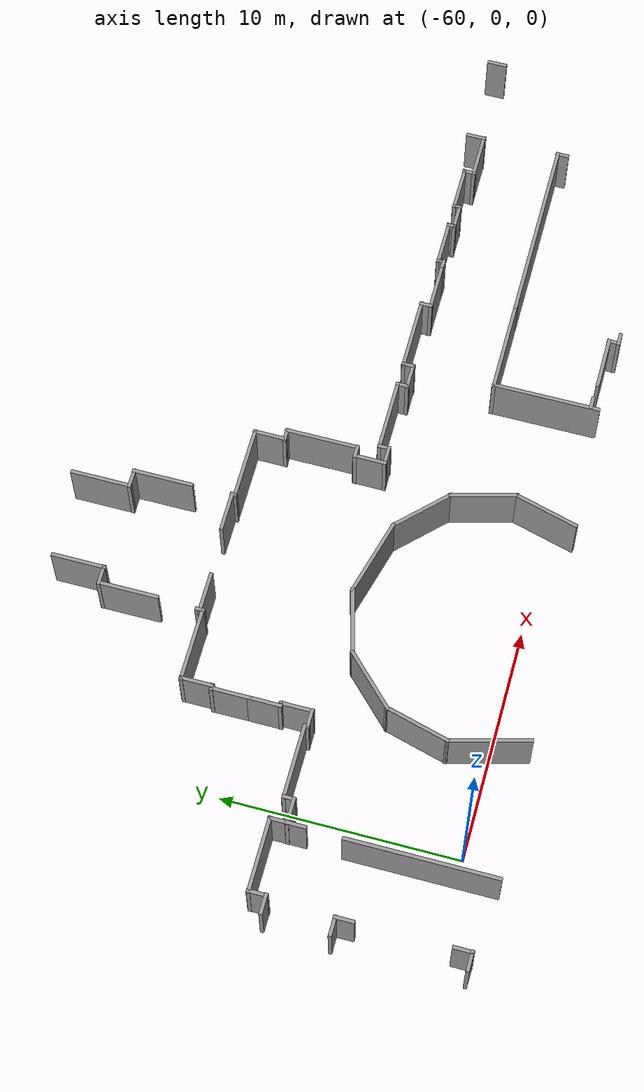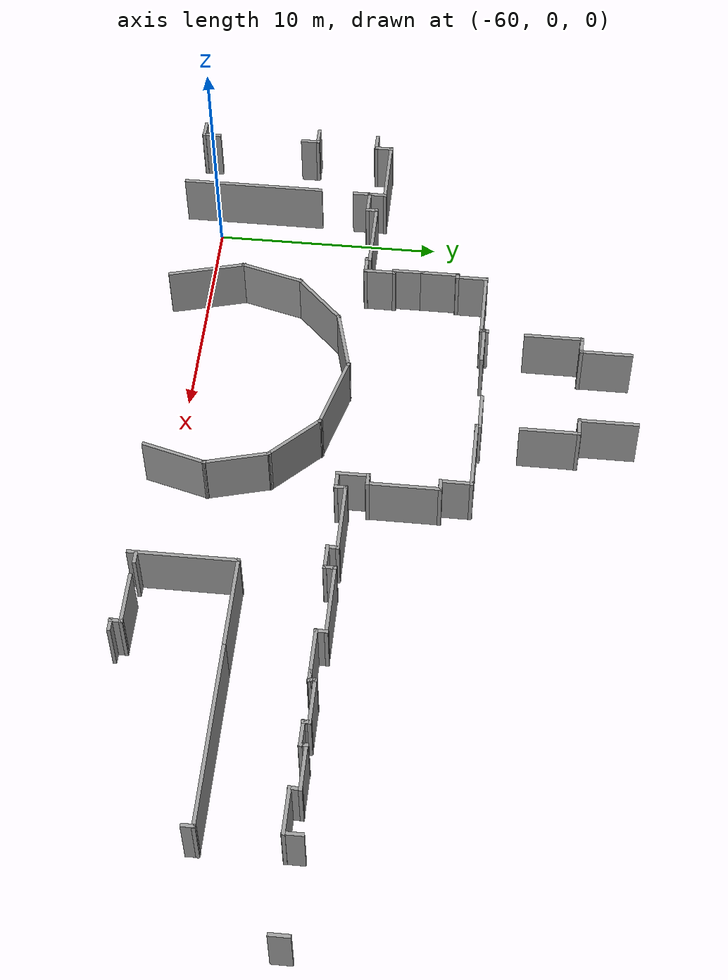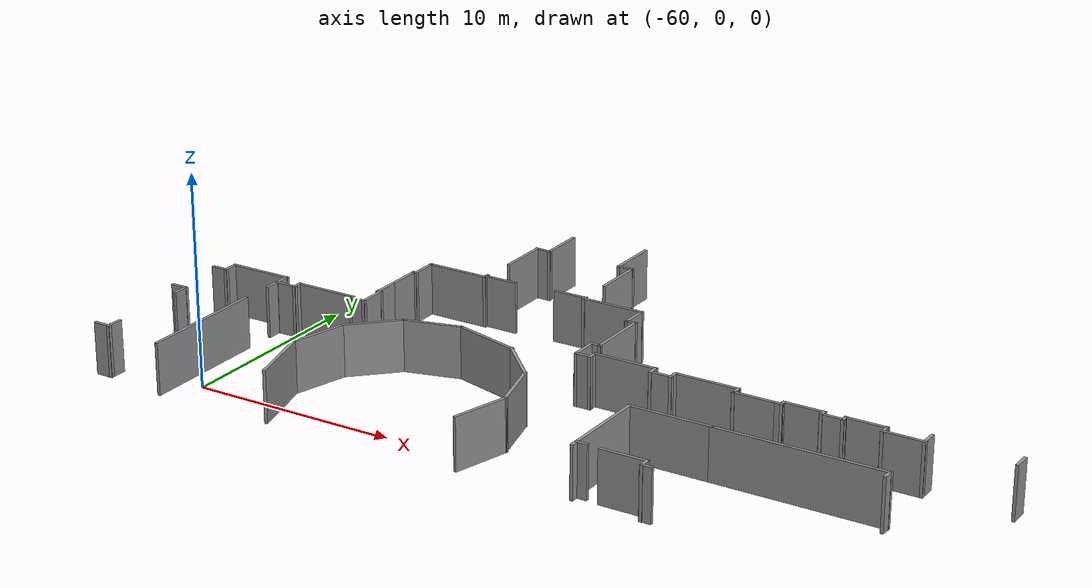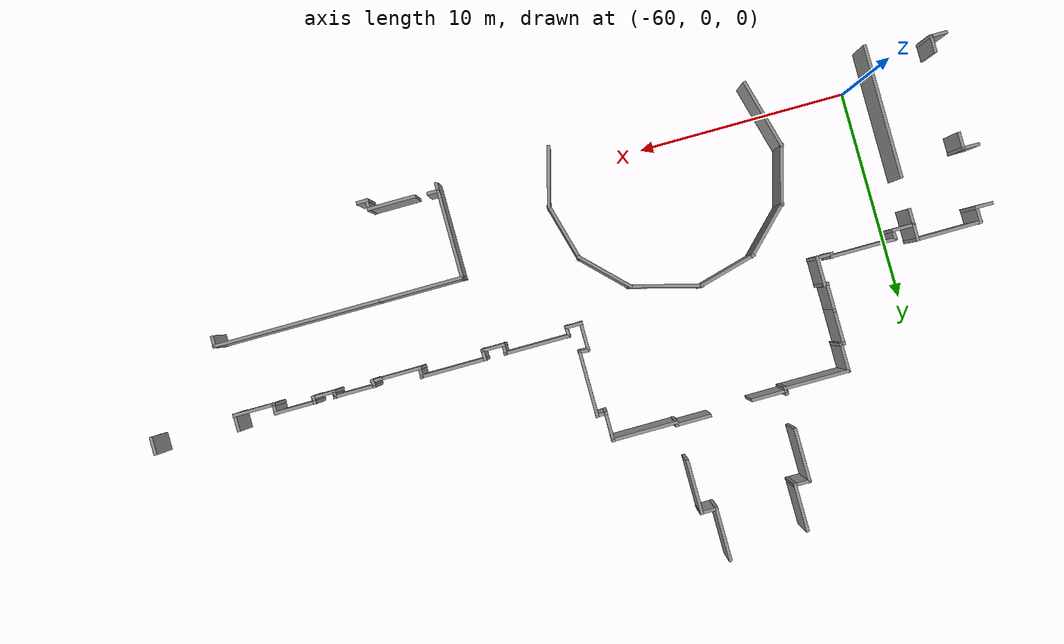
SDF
<sdf version="1.7">
 <model name="TD_n1">
  <pose>-8.28511 -2.84735 0 0 -0 0</pose>
  <link name="Wall_100">
   <collision name="Wall_100_Collision">
    <geometry><box><size>2.32 0.15 2.5</size></box></geometry>
    <pose>0 0 1.25 0 -0 0</pose>
   </collision>
   <visual name="Wall_100_Visual">
    <pose>0 0 1.25 0 -0 0</pose>
    <geometry><box><size>2.32 0.15 2.5</size></box></geometry>
    <material>
     <script><uri>file://media/materials/scripts/gazebo.material</uri><name>Gazebo/Grey</name></script>
     <ambient>1 1 1 1</ambient>
    </material>
    <meta><layer>0</layer></meta>
   </visual>
   <pose>-29.7887 2.31174 0 0 -0 3.14159</pose>
  </link>
  <link name="Wall_104">
   <collision name="Wall_104_Collision">
    <geometry><box><size>3.48 0.15 2.5</size></box></geometry>
    <pose>0 0 1.25 0 -0 0</pose>
   </collision>
   <visual name="Wall_104_Visual">
    <pose>0 0 1.25 0 -0 0</pose>
    <geometry><box><size>3.48 0.15 2.5</size></box></geometry>
    <material>
     <script><uri>file://media/materials/scripts/gazebo.material</uri><name>Gazebo/Grey</name></script>
     <ambient>1 1 1 1</ambient>
    </material>
    <meta><layer>0</layer></meta>
   </visual>
   <pose>-47.4162 2.95714 0 0 -0 1.8326</pose>
  </link>
  <link name="Wall_105">
   <collision name="Wall_105_Collision">
    <geometry><box><size>2.9 0.15 2.5</size></box></geometry>
    <pose>0 0 1.25 0 -0 0</pose>
   </collision>
   <visual name="Wall_105_Visual">
    <pose>0 0 1.25 0 -0 0</pose>
    <geometry><box><size>2.9 0.15 2.5</size></box></geometry>
    <material>
     <script><uri>file://media/materials/scripts/gazebo.material</uri><name>Gazebo/Grey</name></script>
     <ambient>1 1 1 1</ambient>
    </material>
    <meta><layer>0</layer></meta>
   </visual>
   <pose>-47.4912 5.87037 0 0 -0 1.309</pose>
  </link>
  <link name="Wall_106">
   <collision name="Wall_106_Collision">
    <geometry><box><size>2.9 0.15 2.5</size></box></geometry>
    <pose>0 0 1.25 0 -0 0</pose>
   </collision>
   <visual name="Wall_106_Visual">
    <pose>0 0 1.25 0 -0 0</pose>
    <geometry><box><size>2.9 0.15 2.5</size></box></geometry>
    <material>
     <script><uri>file://media/materials/scripts/gazebo.material</uri><name>Gazebo/Grey</name></script>
     <ambient>1 1 1 1</ambient>
    </material>
    <meta><layer>0</layer></meta>
   </visual>
   <pose>-46.1746 8.15072 0 0 -0 0.785398</pose>
  </link>
  <link name="Wall_107">
   <collision name="Wall_107_Collision">
    <geometry><box><size>2.9 0.15 2.5</size></box></geometry>
    <pose>0 0 1.25 0 -0 0</pose>
   </collision>
   <visual name="Wall_107_Visual">
    <pose>0 0 1.25 0 -0 0</pose>
    <geometry><box><size>2.9 0.15 2.5</size></box></geometry>
    <material>
     <script><uri>file://media/materials/scripts/gazebo.material</uri><name>Gazebo/Grey</name></script>
     <ambient>1 1 1 1</ambient>
    </material>
    <meta><layer>0</layer></meta>
   </visual>
   <pose>-43.8943 9.46727 0 0 -0 0.261799</pose>
  </link>
  <link name="Wall_108">
   <collision name="Wall_108_Collision">
    <geometry><box><size>3.48 0.15 2.5</size></box></geometry>
    <pose>0 0 1.25 0 -0 0</pose>
   </collision>
   <visual name="Wall_108_Visual">
    <pose>0 0 1.25 0 -0 0</pose>
    <geometry><box><size>3.48 0.15 2.5</size></box></geometry>
    <material>
     <script><uri>file://media/materials/scripts/gazebo.material</uri><name>Gazebo/Grey</name></script>
     <ambient>1 1 1 1</ambient>
    </material>
    <meta><layer>0</layer></meta>
   </visual>
   <pose>-40.9811 9.39222 0 0 -0 -0.261799</pose>
  </link>
  <link name="Wall_109">
   <collision name="Wall_109_Collision">
    <geometry><box><size>2.9 0.15 2.5</size></box></geometry>
    <pose>0 0 1.25 0 -0 0</pose>
   </collision>
   <visual name="Wall_109_Visual">
    <pose>0 0 1.25 0 -0 0</pose>
    <geometry><box><size>2.9 0.15 2.5</size></box></geometry>
    <material>
     <script><uri>file://media/materials/scripts/gazebo.material</uri><name>Gazebo/Grey</name></script>
     <ambient>1 1 1 1</ambient>
    </material>
    <meta><layer>0</layer></meta>
   </visual>
   <pose>-38.4206 8.0006 0 0 -0 -0.785398</pose>
  </link>
  <link name="Wall_110">
   <collision name="Wall_110_Collision">
    <geometry><box><size>2.9 0.15 2.5</size></box></geometry>
    <pose>0 0 1.25 0 -0 0</pose>
   </collision>
   <visual name="Wall_110_Visual">
    <pose>0 0 1.25 0 -0 0</pose>
    <geometry><box><size>2.9 0.15 2.5</size></box></geometry>
    <material>
     <script><uri>file://media/materials/scripts/gazebo.material</uri><name>Gazebo/Grey</name></script>
     <ambient>1 1 1 1</ambient>
    </material>
    <meta><layer>0</layer></meta>
   </visual>
   <pose>-37.104 5.72025 0 0 -0 -1.309</pose>
  </link>
  <link name="Wall_111">
   <collision name="Wall_111_Collision">
    <geometry><box><size>2.9 0.15 2.5</size></box></geometry>
    <pose>0 0 1.25 0 -0 0</pose>
   </collision>
   <visual name="Wall_111_Visual">
    <pose>0 0 1.25 0 -0 0</pose>
    <geometry><box><size>2.9 0.15 2.5</size></box></geometry>
    <material>
     <script><uri>file://media/materials/scripts/gazebo.material</uri><name>Gazebo/Grey</name></script>
     <ambient>1 1 1 1</ambient>
    </material>
    <meta><layer>0</layer></meta>
   </visual>
   <pose>-37.104 3.08714 0 0 -0 -1.8326</pose>
  </link>
  <link name="Wall_115">
   <collision name="Wall_115_Collision">
    <geometry><box><size>0.87 0.15 2.5</size></box></geometry>
    <pose>0 0 1.25 0 -0 0</pose>
   </collision>
   <visual name="Wall_115_Visual">
    <pose>0 0 1.25 0 -0 0</pose>
    <geometry><box><size>0.87 0.15 2.5</size></box></geometry>
    <material>
     <script><uri>file://media/materials/scripts/gazebo.material</uri><name>Gazebo/Grey</name></script>
     <ambient>1 1 1 1</ambient>
    </material>
    <meta><layer>0</layer></meta>
   </visual>
   <pose>-52.7309 9.37865 0 0 -0 1.5708</pose>
  </link>
  <link name="Wall_116">
   <collision name="Wall_116_Collision">
    <geometry><box><size>1.16 0.15 2.5</size></box></geometry>
    <pose>0 0 1.25 0 -0 0</pose>
   </collision>
   <visual name="Wall_116_Visual">
    <pose>0 0 1.25 0 -0 0</pose>
    <geometry><box><size>1.16 0.15 2.5</size></box></geometry>
    <material>
     <script><uri>file://media/materials/scripts/gazebo.material</uri><name>Gazebo/Grey</name></script>
     <ambient>1 1 1 1</ambient>
    </material>
    <meta><layer>0</layer></meta>
   </visual>
   <pose>-52.2379 9.72665 0 0 -0 0</pose>
  </link>
  <link name="Wall_117">
   <collision name="Wall_117_Collision">
    <geometry><box><size>0.58 0.15 2.5</size></box></geometry>
    <pose>0 0 1.25 0 -0 0</pose>
   </collision>
   <visual name="Wall_117_Visual">
    <pose>0 0 1.25 0 -0 0</pose>
    <geometry><box><size>0.58 0.15 2.5</size></box></geometry>
    <material>
     <script><uri>file://media/materials/scripts/gazebo.material</uri><name>Gazebo/Grey</name></script>
     <ambient>1 1 1 1</ambient>
    </material>
    <meta><layer>0</layer></meta>
   </visual>
   <pose>-51.7449 9.92965 0 0 -0 1.5708</pose>
  </link>
  <link name="Wall_118">
   <collision name="Wall_118_Collision">
    <geometry><box><size>3.19 0.15 2.5</size></box></geometry>
    <pose>0 0 1.25 0 -0 0</pose>
   </collision>
   <visual name="Wall_118_Visual">
    <pose>0 0 1.25 0 -0 0</pose>
    <geometry><box><size>3.19 0.15 2.5</size></box></geometry>
    <material>
     <script><uri>file://media/materials/scripts/gazebo.material</uri><name>Gazebo/Grey</name></script>
     <ambient>1 1 1 1</ambient>
    </material>
    <meta><layer>0</layer></meta>
   </visual>
   <pose>-50.2369 10.1326 0 0 -0 0</pose>
  </link>
  <link name="Wall_121">
   <collision name="Wall_121_Collision">
    <geometry><box><size>0.29 0.15 2.5</size></box></geometry>
    <pose>0 0 1.25 0 -0 0</pose>
   </collision>
   <visual name="Wall_121_Visual">
    <pose>0 0 1.25 0 -0 0</pose>
    <geometry><box><size>0.29 0.15 2.5</size></box></geometry>
    <material>
     <script><uri>file://media/materials/scripts/gazebo.material</uri><name>Gazebo/Grey</name></script>
     <ambient>1 1 1 1</ambient>
    </material>
    <meta><layer>0</layer></meta>
   </visual>
   <pose>-48.7289 10.0746 0 0 -0 -1.5708</pose>
  </link>
  <link name="Wall_122">
   <collision name="Wall_122_Collision">
    <geometry><box><size>0.87 0.15 2.5</size></box></geometry>
    <pose>0 0 1.25 0 -0 0</pose>
   </collision>
   <visual name="Wall_122_Visual">
    <pose>0 0 1.25 0 -0 0</pose>
    <geometry><box><size>0.87 0.15 2.5</size></box></geometry>
    <material>
     <script><uri>file://media/materials/scripts/gazebo.material</uri><name>Gazebo/Grey</name></script>
     <ambient>1 1 1 1</ambient>
    </material>
    <meta><layer>0</layer></meta>
   </visual>
   <pose>-48.3809 10.0166 0 0 -0 0</pose>
  </link>
  <link name="Wall_123">
   <collision name="Wall_123_Collision">
    <geometry><box><size>1.45 0.15 2.5</size></box></geometry>
    <pose>0 0 1.25 0 -0 0</pose>
   </collision>
   <visual name="Wall_123_Visual">
    <pose>0 0 1.25 0 -0 0</pose>
    <geometry><box><size>1.45 0.15 2.5</size></box></geometry>
    <material>
     <script><uri>file://media/materials/scripts/gazebo.material</uri><name>Gazebo/Grey</name></script>
     <ambient>1 1 1 1</ambient>
    </material>
    <meta><layer>0</layer></meta>
   </visual>
   <pose>-48.0329 10.6546 0 0 -0 1.5708</pose>
  </link>
  <link name="Wall_124">
   <collision name="Wall_124_Collision">
    <geometry><box><size>0.29 0.15 2.5</size></box></geometry>
    <pose>0 0 1.25 0 -0 0</pose>
   </collision>
   <visual name="Wall_124_Visual">
    <pose>0 0 1.25 0 -0 0</pose>
    <geometry><box><size>0.29 0.15 2.5</size></box></geometry>
    <material>
     <script><uri>file://media/materials/scripts/gazebo.material</uri><name>Gazebo/Grey</name></script>
     <ambient>1 1 1 1</ambient>
    </material>
    <meta><layer>0</layer></meta>
   </visual>
   <pose>-48.0909 11.2926 0 0 -0 3.14159</pose>
  </link>
  <link name="Wall_125">
   <collision name="Wall_125_Collision">
    <geometry><box><size>1.45 0.15 2.5</size></box></geometry>
    <pose>0 0 1.25 0 -0 0</pose>
   </collision>
   <visual name="Wall_125_Visual">
    <pose>0 0 1.25 0 -0 0</pose>
    <geometry><box><size>1.45 0.15 2.5</size></box></geometry>
    <material>
     <script><uri>file://media/materials/scripts/gazebo.material</uri><name>Gazebo/Grey</name></script>
     <ambient>1 1 1 1</ambient>
    </material>
    <meta><layer>0</layer></meta>
   </visual>
   <pose>-48.1489 11.9306 0 0 -0 1.5708</pose>
  </link>
  <link name="Wall_127">
   <collision name="Wall_127_Collision">
    <geometry><box><size>1.74 0.15 2.5</size></box></geometry>
    <pose>0 0 1.25 0 -0 0</pose>
   </collision>
   <visual name="Wall_127_Visual">
    <pose>0 0 1.25 0 -0 0</pose>
    <geometry><box><size>1.74 0.15 2.5</size></box></geometry>
    <material>
     <script><uri>file://media/materials/scripts/gazebo.material</uri><name>Gazebo/Grey</name></script>
     <ambient>1 1 1 1</ambient>
    </material>
    <meta><layer>0</layer></meta>
   </visual>
   <pose>-48.1489 13.3516 0 0 -0 1.5708</pose>
  </link>
  <link name="Wall_128">
   <collision name="Wall_128_Collision">
    <geometry><box><size>0.29 0.15 2.5</size></box></geometry>
    <pose>0 0 1.25 0 -0 0</pose>
   </collision>
   <visual name="Wall_128_Visual">
    <pose>0 0 1.25 0 -0 0</pose>
    <geometry><box><size>0.29 0.15 2.5</size></box></geometry>
    <material>
     <script><uri>file://media/materials/scripts/gazebo.material</uri><name>Gazebo/Grey</name></script>
     <ambient>1 1 1 1</ambient>
    </material>
    <meta><layer>0</layer></meta>
   </visual>
   <pose>-48.0909 14.1346 0 0 -0 0</pose>
  </link>
  <link name="Wall_129">
   <collision name="Wall_129_Collision">
    <geometry><box><size>1.45 0.15 2.5</size></box></geometry>
    <pose>0 0 1.25 0 -0 0</pose>
   </collision>
   <visual name="Wall_129_Visual">
    <pose>0 0 1.25 0 -0 0</pose>
    <geometry><box><size>1.45 0.15 2.5</size></box></geometry>
    <material>
     <script><uri>file://media/materials/scripts/gazebo.material</uri><name>Gazebo/Grey</name></script>
     <ambient>1 1 1 1</ambient>
    </material>
    <meta><layer>0</layer></meta>
   </visual>
   <pose>-48.0329 14.7726 0 0 -0 1.5708</pose>
  </link>
  <link name="Wall_130">
   <collision name="Wall_130_Collision">
    <geometry><box><size>3.19 0.15 2.5</size></box></geometry>
    <pose>0 0 1.25 0 -0 0</pose>
   </collision>
   <visual name="Wall_130_Visual">
    <pose>0 0 1.25 0 -0 0</pose>
    <geometry><box><size>3.19 0.15 2.5</size></box></geometry>
    <material>
     <script><uri>file://media/materials/scripts/gazebo.material</uri><name>Gazebo/Grey</name></script>
     <ambient>1 1 1 1</ambient>
    </material>
    <meta><layer>0</layer></meta>
   </visual>
   <pose>-46.5249 15.4106 0 0 -0 0</pose>
  </link>
  <link name="Wall_131">
   <collision name="Wall_131_Collision">
    <geometry><box><size>0.29 0.15 2.5</size></box></geometry>
    <pose>0 0 1.25 0 -0 0</pose>
   </collision>
   <visual name="Wall_131_Visual">
    <pose>0 0 1.25 0 -0 0</pose>
    <geometry><box><size>0.29 0.15 2.5</size></box></geometry>
    <material>
     <script><uri>file://media/materials/scripts/gazebo.material</uri><name>Gazebo/Grey</name></script>
     <ambient>1 1 1 1</ambient>
    </material>
    <meta><layer>0</layer></meta>
   </visual>
   <pose>-45.0169 15.4686 0 0 -0 1.5708</pose>
  </link>
  <link name="Wall_132">
   <collision name="Wall_132_Collision">
    <geometry><box><size>1.74 0.15 2.5</size></box></geometry>
    <pose>0 0 1.25 0 -0 0</pose>
   </collision>
   <visual name="Wall_132_Visual">
    <pose>0 0 1.25 0 -0 0</pose>
    <geometry><box><size>1.74 0.15 2.5</size></box></geometry>
    <material>
     <script><uri>file://media/materials/scripts/gazebo.material</uri><name>Gazebo/Grey</name></script>
     <ambient>1 1 1 1</ambient>
    </material>
    <meta><layer>0</layer></meta>
   </visual>
   <pose>-44.2339 15.5266 0 0 -0 0</pose>
  </link>
  <link name="Wall_134">
   <collision name="Wall_134_Collision">
    <geometry><box><size>1.74 0.15 2.5</size></box></geometry>
    <pose>0 0 1.25 0 -0 0</pose>
   </collision>
   <visual name="Wall_134_Visual">
    <pose>0 0 1.25 0 -0 0</pose>
    <geometry><box><size>1.74 0.15 2.5</size></box></geometry>
    <material>
     <script><uri>file://media/materials/scripts/gazebo.material</uri><name>Gazebo/Grey</name></script>
     <ambient>1 1 1 1</ambient>
    </material>
    <meta><layer>0</layer></meta>
   </visual>
   <pose>-40.527 15.6964 0 0 -0 0</pose>
  </link>
  <link name="Wall_135">
   <collision name="Wall_135_Collision">
    <geometry><box><size>0.29 0.15 2.5</size></box></geometry>
    <pose>0 0 1.25 0 -0 0</pose>
   </collision>
   <visual name="Wall_135_Visual">
    <pose>0 0 1.25 0 -0 0</pose>
    <geometry><box><size>0.29 0.15 2.5</size></box></geometry>
    <material>
     <script><uri>file://media/materials/scripts/gazebo.material</uri><name>Gazebo/Grey</name></script>
     <ambient>1 1 1 1</ambient>
    </material>
    <meta><layer>0</layer></meta>
   </visual>
   <pose>-39.744 15.6384 0 0 -0 -1.5708</pose>
  </link>
  <link name="Wall_136">
   <collision name="Wall_136_Collision">
    <geometry><box><size>3.19 0.15 2.5</size></box></geometry>
    <pose>0 0 1.25 0 -0 0</pose>
   </collision>
   <visual name="Wall_136_Visual">
    <pose>0 0 1.25 0 -0 0</pose>
    <geometry><box><size>3.19 0.15 2.5</size></box></geometry>
    <material>
     <script><uri>file://media/materials/scripts/gazebo.material</uri><name>Gazebo/Grey</name></script>
     <ambient>1 1 1 1</ambient>
    </material>
    <meta><layer>0</layer></meta>
   </visual>
   <pose>-38.236 15.5804 0 0 -0 0</pose>
  </link>
  <link name="Wall_137">
   <collision name="Wall_137_Collision">
    <geometry><box><size>1.45 0.15 2.5</size></box></geometry>
    <pose>0 0 1.25 0 -0 0</pose>
   </collision>
   <visual name="Wall_137_Visual">
    <pose>0 0 1.25 0 -0 0</pose>
    <geometry><box><size>1.45 0.15 2.5</size></box></geometry>
    <material>
     <script><uri>file://media/materials/scripts/gazebo.material</uri><name>Gazebo/Grey</name></script>
     <ambient>1 1 1 1</ambient>
    </material>
    <meta><layer>0</layer></meta>
   </visual>
   <pose>-36.728 14.9424 0 0 -0 -1.5708</pose>
  </link>
  <link name="Wall_138">
   <collision name="Wall_138_Collision">
    <geometry><box><size>0.58 0.15 2.5</size></box></geometry>
    <pose>0 0 1.25 0 -0 0</pose>
   </collision>
   <visual name="Wall_138_Visual">
    <pose>0 0 1.25 0 -0 0</pose>
    <geometry><box><size>0.58 0.15 2.5</size></box></geometry>
    <material>
     <script><uri>file://media/materials/scripts/gazebo.material</uri><name>Gazebo/Grey</name></script>
     <ambient>1 1 1 1</ambient>
    </material>
    <meta><layer>0</layer></meta>
   </visual>
   <pose>-36.525 14.3044 0 0 -0 0</pose>
  </link>
  <link name="Wall_139">
   <collision name="Wall_139_Collision">
    <geometry><box><size>3.19 0.15 2.5</size></box></geometry>
    <pose>0 0 1.25 0 -0 0</pose>
   </collision>
   <visual name="Wall_139_Visual">
    <pose>0 0 1.25 0 -0 0</pose>
    <geometry><box><size>3.19 0.15 2.5</size></box></geometry>
    <material>
     <script><uri>file://media/materials/scripts/gazebo.material</uri><name>Gazebo/Grey</name></script>
     <ambient>1 1 1 1</ambient>
    </material>
    <meta><layer>0</layer></meta>
   </visual>
   <pose>-36.322 12.7964 0 0 -0 -1.5708</pose>
  </link>
  <link name="Wall_141">
   <collision name="Wall_141_Collision">
    <geometry><box><size>0.58 0.15 2.5</size></box></geometry>
    <pose>0 0 1.25 0 -0 0</pose>
   </collision>
   <visual name="Wall_141_Visual">
    <pose>0 0 1.25 0 -0 0</pose>
    <geometry><box><size>0.58 0.15 2.5</size></box></geometry>
    <material>
     <script><uri>file://media/materials/scripts/gazebo.material</uri><name>Gazebo/Grey</name></script>
     <ambient>1 1 1 1</ambient>
    </material>
    <meta><layer>0</layer></meta>
   </visual>
   <pose>-36.525 11.2884 0 0 -0 3.14159</pose>
  </link>
  <link name="Wall_142">
   <collision name="Wall_142_Collision">
    <geometry><box><size>1.45 0.15 2.5</size></box></geometry>
    <pose>0 0 1.25 0 -0 0</pose>
   </collision>
   <visual name="Wall_142_Visual">
    <pose>0 0 1.25 0 -0 0</pose>
    <geometry><box><size>1.45 0.15 2.5</size></box></geometry>
    <material>
     <script><uri>file://media/materials/scripts/gazebo.material</uri><name>Gazebo/Grey</name></script>
     <ambient>1 1 1 1</ambient>
    </material>
    <meta><layer>0</layer></meta>
   </visual>
   <pose>-36.728 10.6504 0 0 -0 -1.5708</pose>
  </link>
  <link name="Wall_143">
   <collision name="Wall_143_Collision">
    <geometry><box><size>0.87 0.15 2.5</size></box></geometry>
    <pose>0 0 1.25 0 -0 0</pose>
   </collision>
   <visual name="Wall_143_Visual">
    <pose>0 0 1.25 0 -0 0</pose>
    <geometry><box><size>0.87 0.15 2.5</size></box></geometry>
    <material>
     <script><uri>file://media/materials/scripts/gazebo.material</uri><name>Gazebo/Grey</name></script>
     <ambient>1 1 1 1</ambient>
    </material>
    <meta><layer>0</layer></meta>
   </visual>
   <pose>-36.38 10.0124 0 0 -0 0</pose>
  </link>
  <link name="Wall_144">
   <collision name="Wall_144_Collision">
    <geometry><box><size>0.58 0.15 2.5</size></box></geometry>
    <pose>0 0 1.25 0 -0 0</pose>
   </collision>
   <visual name="Wall_144_Visual">
    <pose>0 0 1.25 0 -0 0</pose>
    <geometry><box><size>0.58 0.15 2.5</size></box></geometry>
    <material>
     <script><uri>file://media/materials/scripts/gazebo.material</uri><name>Gazebo/Grey</name></script>
     <ambient>1 1 1 1</ambient>
    </material>
    <meta><layer>0</layer></meta>
   </visual>
   <pose>-36.032 10.2154 0 0 -0 1.5708</pose>
  </link>
  <link name="Wall_145">
   <collision name="Wall_145_Collision">
    <geometry><box><size>3.19 0.15 2.5</size></box></geometry>
    <pose>0 0 1.25 0 -0 0</pose>
   </collision>
   <visual name="Wall_145_Visual">
    <pose>0 0 1.25 0 -0 0</pose>
    <geometry><box><size>3.19 0.15 2.5</size></box></geometry>
    <material>
     <script><uri>file://media/materials/scripts/gazebo.material</uri><name>Gazebo/Grey</name></script>
     <ambient>1 1 1 1</ambient>
    </material>
    <meta><layer>0</layer></meta>
   </visual>
   <pose>-34.524 10.4184 0 0 -0 0</pose>
  </link>
  <link name="Wall_146">
   <collision name="Wall_146_Collision">
    <geometry><box><size>0.58 0.15 2.5</size></box></geometry>
    <pose>0 0 1.25 0 -0 0</pose>
   </collision>
   <visual name="Wall_146_Visual">
    <pose>0 0 1.25 0 -0 0</pose>
    <geometry><box><size>0.58 0.15 2.5</size></box></geometry>
    <material>
     <script><uri>file://media/materials/scripts/gazebo.material</uri><name>Gazebo/Grey</name></script>
     <ambient>1 1 1 1</ambient>
    </material>
    <meta><layer>0</layer></meta>
   </visual>
   <pose>-33.016 10.2154 0 0 -0 -1.5708</pose>
  </link>
  <link name="Wall_147">
   <collision name="Wall_147_Collision">
    <geometry><box><size>1.16 0.15 2.5</size></box></geometry>
    <pose>0 0 1.25 0 -0 0</pose>
   </collision>
   <visual name="Wall_147_Visual">
    <pose>0 0 1.25 0 -0 0</pose>
    <geometry><box><size>1.16 0.15 2.5</size></box></geometry>
    <material>
     <script><uri>file://media/materials/scripts/gazebo.material</uri><name>Gazebo/Grey</name></script>
     <ambient>1 1 1 1</ambient>
    </material>
    <meta><layer>0</layer></meta>
   </visual>
   <pose>-32.523 10.0124 0 0 -0 0</pose>
  </link>
  <link name="Wall_148">
   <collision name="Wall_148_Collision">
    <geometry><box><size>0.58 0.15 2.5</size></box></geometry>
    <pose>0 0 1.25 0 -0 0</pose>
   </collision>
   <visual name="Wall_148_Visual">
    <pose>0 0 1.25 0 -0 0</pose>
    <geometry><box><size>0.58 0.15 2.5</size></box></geometry>
    <material>
     <script><uri>file://media/materials/scripts/gazebo.material</uri><name>Gazebo/Grey</name></script>
     <ambient>1 1 1 1</ambient>
    </material>
    <meta><layer>0</layer></meta>
   </visual>
   <pose>-32.03 10.2154 0 0 -0 1.5708</pose>
  </link>
  <link name="Wall_149">
   <collision name="Wall_149_Collision">
    <geometry><box><size>3.19 0.15 2.5</size></box></geometry>
    <pose>0 0 1.25 0 -0 0</pose>
   </collision>
   <visual name="Wall_149_Visual">
    <pose>0 0 1.25 0 -0 0</pose>
    <geometry><box><size>3.19 0.15 2.5</size></box></geometry>
    <material>
     <script><uri>file://media/materials/scripts/gazebo.material</uri><name>Gazebo/Grey</name></script>
     <ambient>1 1 1 1</ambient>
    </material>
    <meta><layer>0</layer></meta>
   </visual>
   <pose>-30.522 10.4184 0 0 -0 0</pose>
  </link>
  <link name="Wall_150">
   <collision name="Wall_150_Collision">
    <geometry><box><size>0.58 0.15 2.5</size></box></geometry>
    <pose>0 0 1.25 0 -0 0</pose>
   </collision>
   <visual name="Wall_150_Visual">
    <pose>0 0 1.25 0 -0 0</pose>
    <geometry><box><size>0.58 0.15 2.5</size></box></geometry>
    <material>
     <script><uri>file://media/materials/scripts/gazebo.material</uri><name>Gazebo/Grey</name></script>
     <ambient>1 1 1 1</ambient>
    </material>
    <meta><layer>0</layer></meta>
   </visual>
   <pose>-29.014 10.2154 0 0 -0 -1.5708</pose>
  </link>
  <link name="Wall_151">
   <collision name="Wall_151_Collision">
    <geometry><box><size>2.03 0.15 2.5</size></box></geometry>
    <pose>0 0 1.25 0 -0 0</pose>
   </collision>
   <visual name="Wall_151_Visual">
    <pose>0 0 1.25 0 -0 0</pose>
    <geometry><box><size>2.03 0.15 2.5</size></box></geometry>
    <material>
     <script><uri>file://media/materials/scripts/gazebo.material</uri><name>Gazebo/Grey</name></script>
     <ambient>1 1 1 1</ambient>
    </material>
    <meta><layer>0</layer></meta>
   </visual>
   <pose>-28.086 10.0124 0 0 -0 0</pose>
  </link>
  <link name="Wall_152">
   <collision name="Wall_152_Collision">
    <geometry><box><size>0.58 0.15 2.5</size></box></geometry>
    <pose>0 0 1.25 0 -0 0</pose>
   </collision>
   <visual name="Wall_152_Visual">
    <pose>0 0 1.25 0 -0 0</pose>
    <geometry><box><size>0.58 0.15 2.5</size></box></geometry>
    <material>
     <script><uri>file://media/materials/scripts/gazebo.material</uri><name>Gazebo/Grey</name></script>
     <ambient>1 1 1 1</ambient>
    </material>
    <meta><layer>0</layer></meta>
   </visual>
   <pose>-26.955 10.0124 0 0 -0 0</pose>
  </link>
  <link name="Wall_153">
   <collision name="Wall_153_Collision">
    <geometry><box><size>0.29 0.15 2.5</size></box></geometry>
    <pose>0 0 1.25 0 -0 0</pose>
   </collision>
   <visual name="Wall_153_Visual">
    <pose>0 0 1.25 0 -0 0</pose>
    <geometry><box><size>0.29 0.15 2.5</size></box></geometry>
    <material>
     <script><uri>file://media/materials/scripts/gazebo.material</uri><name>Gazebo/Grey</name></script>
     <ambient>1 1 1 1</ambient>
    </material>
    <meta><layer>0</layer></meta>
   </visual>
   <pose>-26.7671 10.0684 0 0 -0 1.8326</pose>
  </link>
  <link name="Wall_154">
   <collision name="Wall_154_Collision">
    <geometry><box><size>0.29 0.15 2.5</size></box></geometry>
    <pose>0 0 1.25 0 -0 0</pose>
   </collision>
   <visual name="Wall_154_Visual">
    <pose>0 0 1.25 0 -0 0</pose>
    <geometry><box><size>0.29 0.15 2.5</size></box></geometry>
    <material>
     <script><uri>file://media/materials/scripts/gazebo.material</uri><name>Gazebo/Grey</name></script>
     <ambient>1 1 1 1</ambient>
    </material>
    <meta><layer>0</layer></meta>
   </visual>
   <pose>-26.7821 10.1824 0 0 -0 1.5708</pose>
  </link>
  <link name="Wall_155">
   <collision name="Wall_155_Collision">
    <geometry><box><size>2.03 0.15 2.5</size></box></geometry>
    <pose>0 0 1.25 0 -0 0</pose>
   </collision>
   <visual name="Wall_155_Visual">
    <pose>0 0 1.25 0 -0 0</pose>
    <geometry><box><size>2.03 0.15 2.5</size></box></geometry>
    <material>
     <script><uri>file://media/materials/scripts/gazebo.material</uri><name>Gazebo/Grey</name></script>
     <ambient>1 1 1 1</ambient>
    </material>
    <meta><layer>0</layer></meta>
   </visual>
   <pose>-25.8541 10.2404 0 0 -0 0</pose>
  </link>
  <link name="Wall_157">
   <collision name="Wall_157_Collision">
    <geometry><box><size>0.29 0.15 2.5</size></box></geometry>
    <pose>0 0 1.25 0 -0 0</pose>
   </collision>
   <visual name="Wall_157_Visual">
    <pose>0 0 1.25 0 -0 0</pose>
    <geometry><box><size>0.29 0.15 2.5</size></box></geometry>
    <material>
     <script><uri>file://media/materials/scripts/gazebo.material</uri><name>Gazebo/Grey</name></script>
     <ambient>1 1 1 1</ambient>
    </material>
    <meta><layer>0</layer></meta>
   </visual>
   <pose>-45.0169 15.5846 0 0 -0 1.5708</pose>
  </link>
  <link name="Wall_159">
   <collision name="Wall_159_Collision">
    <geometry><box><size>2.61 0.15 2.5</size></box></geometry>
    <pose>0 0 1.25 0 -0 0</pose>
   </collision>
   <visual name="Wall_159_Visual">
    <pose>0 0 1.25 0 -0 0</pose>
    <geometry><box><size>2.61 0.15 2.5</size></box></geometry>
    <material>
     <script><uri>file://media/materials/scripts/gazebo.material</uri><name>Gazebo/Grey</name></script>
     <ambient>1 1 1 1</ambient>
    </material>
    <meta><layer>0</layer></meta>
   </visual>
   <pose>-44.94 18.5928 0 0 -0 1.5708</pose>
  </link>
  <link name="Wall_160">
   <collision name="Wall_160_Collision">
    <geometry><box><size>0.87 0.15 2.5</size></box></geometry>
    <pose>0 0 1.25 0 -0 0</pose>
   </collision>
   <visual name="Wall_160_Visual">
    <pose>0 0 1.25 0 -0 0</pose>
    <geometry><box><size>0.87 0.15 2.5</size></box></geometry>
    <material>
     <script><uri>file://media/materials/scripts/gazebo.material</uri><name>Gazebo/Grey</name></script>
     <ambient>1 1 1 1</ambient>
    </material>
    <meta><layer>0</layer></meta>
   </visual>
   <pose>-44.592 19.8108 0 0 -0 0</pose>
  </link>
  <link name="Wall_161">
   <collision name="Wall_161_Collision">
    <geometry><box><size>2.32 0.15 2.5</size></box></geometry>
    <pose>0 0 1.25 0 -0 0</pose>
   </collision>
   <visual name="Wall_161_Visual">
    <pose>0 0 1.25 0 -0 0</pose>
    <geometry><box><size>2.32 0.15 2.5</size></box></geometry>
    <material>
     <script><uri>file://media/materials/scripts/gazebo.material</uri><name>Gazebo/Grey</name></script>
     <ambient>1 1 1 1</ambient>
    </material>
    <meta><layer>0</layer></meta>
   </visual>
   <pose>-44.244 20.8838 0 0 -0 1.5708</pose>
  </link>
  <link name="Wall_163">
   <collision name="Wall_163_Collision">
    <geometry><box><size>2.61 0.15 2.5</size></box></geometry>
    <pose>0 0 1.25 0 -0 0</pose>
   </collision>
   <visual name="Wall_163_Visual">
    <pose>0 0 1.25 0 -0 0</pose>
    <geometry><box><size>2.61 0.15 2.5</size></box></geometry>
    <material>
     <script><uri>file://media/materials/scripts/gazebo.material</uri><name>Gazebo/Grey</name></script>
     <ambient>1 1 1 1</ambient>
    </material>
    <meta><layer>0</layer></meta>
   </visual>
   <pose>-39.7665 18.674 0 0 -0 1.5708</pose>
  </link>
  <link name="Wall_164">
   <collision name="Wall_164_Collision">
    <geometry><box><size>0.87 0.15 2.5</size></box></geometry>
    <pose>0 0 1.25 0 -0 0</pose>
   </collision>
   <visual name="Wall_164_Visual">
    <pose>0 0 1.25 0 -0 0</pose>
    <geometry><box><size>0.87 0.15 2.5</size></box></geometry>
    <material>
     <script><uri>file://media/materials/scripts/gazebo.material</uri><name>Gazebo/Grey</name></script>
     <ambient>1 1 1 1</ambient>
    </material>
    <meta><layer>0</layer></meta>
   </visual>
   <pose>-40.1145 19.892 0 0 -0 3.14159</pose>
  </link>
  <link name="Wall_165">
   <collision name="Wall_165_Collision">
    <geometry><box><size>2.61 0.15 2.5</size></box></geometry>
    <pose>0 0 1.25 0 -0 0</pose>
   </collision>
   <visual name="Wall_165_Visual">
    <pose>0 0 1.25 0 -0 0</pose>
    <geometry><box><size>2.61 0.15 2.5</size></box></geometry>
    <material>
     <script><uri>file://media/materials/scripts/gazebo.material</uri><name>Gazebo/Grey</name></script>
     <ambient>1 1 1 1</ambient>
    </material>
    <meta><layer>0</layer></meta>
   </visual>
   <pose>-40.4625 21.11 0 0 -0 1.5708</pose>
  </link>
  <link name="Wall_167">
   <collision name="Wall_167_Collision">
    <geometry><box><size>0.87 0.15 2.5</size></box></geometry>
    <pose>0 0 1.25 0 -0 0</pose>
   </collision>
   <visual name="Wall_167_Visual">
    <pose>0 0 1.25 0 -0 0</pose>
    <geometry><box><size>0.87 0.15 2.5</size></box></geometry>
    <material>
     <script><uri>file://media/materials/scripts/gazebo.material</uri><name>Gazebo/Grey</name></script>
     <ambient>1 1 1 1</ambient>
    </material>
    <meta><layer>0</layer></meta>
   </visual>
   <pose>-52.7309 10.0746 0 0 -0 1.5708</pose>
  </link>
  <link name="Wall_168">
   <collision name="Wall_168_Collision">
    <geometry><box><size>3.19 0.15 2.5</size></box></geometry>
    <pose>0 0 1.25 0 -0 0</pose>
   </collision>
   <visual name="Wall_168_Visual">
    <pose>0 0 1.25 0 -0 0</pose>
    <geometry><box><size>3.19 0.15 2.5</size></box></geometry>
    <material>
     <script><uri>file://media/materials/scripts/gazebo.material</uri><name>Gazebo/Grey</name></script>
     <ambient>1 1 1 1</ambient>
    </material>
    <meta><layer>0</layer></meta>
   </visual>
   <pose>-54.2389 10.4226 0 0 -0 3.14159</pose>
  </link>
  <link name="Wall_169">
   <collision name="Wall_169_Collision">
    <geometry><box><size>0.87 0.15 2.5</size></box></geometry>
    <pose>0 0 1.25 0 -0 0</pose>
   </collision>
   <visual name="Wall_169_Visual">
    <pose>0 0 1.25 0 -0 0</pose>
    <geometry><box><size>0.87 0.15 2.5</size></box></geometry>
    <material>
     <script><uri>file://media/materials/scripts/gazebo.material</uri><name>Gazebo/Grey</name></script>
     <ambient>1 1 1 1</ambient>
    </material>
    <meta><layer>0</layer></meta>
   </visual>
   <pose>-55.7469 10.0746 0 0 -0 -1.5708</pose>
  </link>
  <link name="Wall_171">
   <collision name="Wall_171_Collision">
    <geometry><box><size>0.87 0.15 2.5</size></box></geometry>
    <pose>0 0 1.25 0 -0 0</pose>
   </collision>
   <visual name="Wall_171_Visual">
    <pose>0 0 1.25 0 -0 0</pose>
    <geometry><box><size>0.87 0.15 2.5</size></box></geometry>
    <material>
     <script><uri>file://media/materials/scripts/gazebo.material</uri><name>Gazebo/Grey</name></script>
     <ambient>1 1 1 1</ambient>
    </material>
    <meta><layer>0</layer></meta>
   </visual>
   <pose>-56.0949 9.72665 0 0 -0 3.14159</pose>
  </link>
  <link name="Wall_173">
   <collision name="Wall_173_Collision">
    <geometry><box><size>0.87 0.15 2.5</size></box></geometry>
    <pose>0 0 1.25 0 -0 0</pose>
   </collision>
   <visual name="Wall_173_Visual">
    <pose>0 0 1.25 0 -0 0</pose>
    <geometry><box><size>0.87 0.15 2.5</size></box></geometry>
    <material>
     <script><uri>file://media/materials/scripts/gazebo.material</uri><name>Gazebo/Grey</name></script>
     <ambient>1 1 1 1</ambient>
    </material>
    <meta><layer>0</layer></meta>
   </visual>
   <pose>-56.2345 6.945 0 0 -0 0</pose>
  </link>
  <link name="Wall_174">
   <collision name="Wall_174_Collision">
    <geometry><box><size>0.87 0.15 2.5</size></box></geometry>
    <pose>0 0 1.25 0 -0 0</pose>
   </collision>
   <visual name="Wall_174_Visual">
    <pose>0 0 1.25 0 -0 0</pose>
    <geometry><box><size>0.87 0.15 2.5</size></box></geometry>
    <material>
     <script><uri>file://media/materials/scripts/gazebo.material</uri><name>Gazebo/Grey</name></script>
     <ambient>1 1 1 1</ambient>
    </material>
    <meta><layer>0</layer></meta>
   </visual>
   <pose>-55.8865 6.597 0 0 -0 -1.5708</pose>
  </link>
  <link name="Wall_176">
   <collision name="Wall_176_Collision">
    <geometry><box><size>0.87 0.15 2.5</size></box></geometry>
    <pose>0 0 1.25 0 -0 0</pose>
   </collision>
   <visual name="Wall_176_Visual">
    <pose>0 0 1.25 0 -0 0</pose>
    <geometry><box><size>0.87 0.15 2.5</size></box></geometry>
    <material>
     <script><uri>file://media/materials/scripts/gazebo.material</uri><name>Gazebo/Grey</name></script>
     <ambient>1 1 1 1</ambient>
    </material>
    <meta><layer>0</layer></meta>
   </visual>
   <pose>-55.8521 1.91037 0 0 -0 -1.5708</pose>
  </link>
  <link name="Wall_177">
   <collision name="Wall_177_Collision">
    <geometry><box><size>0.87 0.15 2.5</size></box></geometry>
    <pose>0 0 1.25 0 -0 0</pose>
   </collision>
   <visual name="Wall_177_Visual">
    <pose>0 0 1.25 0 -0 0</pose>
    <geometry><box><size>0.87 0.15 2.5</size></box></geometry>
    <material>
     <script><uri>file://media/materials/scripts/gazebo.material</uri><name>Gazebo/Grey</name></script>
     <ambient>1 1 1 1</ambient>
    </material>
    <meta><layer>0</layer></meta>
   </visual>
   <pose>-56.2001 1.56236 0 0 -0 3.14159</pose>
  </link>
  <link name="Wall_191">
   <collision name="Wall_191_Collision">
    <geometry><box><size>0.29 0.15 2.5</size></box></geometry>
    <pose>0 0 1.25 0 -0 0</pose>
   </collision>
   <visual name="Wall_191_Visual">
    <pose>0 0 1.25 0 -0 0</pose>
    <geometry><box><size>0.29 0.15 2.5</size></box></geometry>
    <material>
     <script><uri>file://media/materials/scripts/gazebo.material</uri><name>Gazebo/Grey</name></script>
     <ambient>1 1 1 1</ambient>
    </material>
    <meta><layer>0</layer></meta>
   </visual>
   <pose>-24.9261 10.1824 0 0 -0 -1.5708</pose>
  </link>
  <link name="Wall_192">
   <collision name="Wall_192_Collision">
    <geometry><box><size>0.29 0.15 2.5</size></box></geometry>
    <pose>0 0 1.25 0 -0 0</pose>
   </collision>
   <visual name="Wall_192_Visual">
    <pose>0 0 1.25 0 -0 0</pose>
    <geometry><box><size>0.29 0.15 2.5</size></box></geometry>
    <material>
     <script><uri>file://media/materials/scripts/gazebo.material</uri><name>Gazebo/Grey</name></script>
     <ambient>1 1 1 1</ambient>
    </material>
    <meta><layer>0</layer></meta>
   </visual>
   <pose>-24.9261 10.0664 0 0 -0 -1.5708</pose>
  </link>
  <link name="Wall_193">
   <collision name="Wall_193_Collision">
    <geometry><box><size>1.16 0.15 2.5</size></box></geometry>
    <pose>0 0 1.25 0 -0 0</pose>
   </collision>
   <visual name="Wall_193_Visual">
    <pose>0 0 1.25 0 -0 0</pose>
    <geometry><box><size>1.16 0.15 2.5</size></box></geometry>
    <material>
     <script><uri>file://media/materials/scripts/gazebo.material</uri><name>Gazebo/Grey</name></script>
     <ambient>1 1 1 1</ambient>
    </material>
    <meta><layer>0</layer></meta>
   </visual>
   <pose>-24.4331 10.0084 0 0 -0 0</pose>
  </link>
  <link name="Wall_194">
   <collision name="Wall_194_Collision">
    <geometry><box><size>0.29 0.15 2.5</size></box></geometry>
    <pose>0 0 1.25 0 -0 0</pose>
   </collision>
   <visual name="Wall_194_Visual">
    <pose>0 0 1.25 0 -0 0</pose>
    <geometry><box><size>0.29 0.15 2.5</size></box></geometry>
    <material>
     <script><uri>file://media/materials/scripts/gazebo.material</uri><name>Gazebo/Grey</name></script>
     <ambient>1 1 1 1</ambient>
    </material>
    <meta><layer>0</layer></meta>
   </visual>
   <pose>-23.9401 10.0664 0 0 -0 1.5708</pose>
  </link>
  <link name="Wall_195">
   <collision name="Wall_195_Collision">
    <geometry><box><size>0.29 0.15 2.5</size></box></geometry>
    <pose>0 0 1.25 0 -0 0</pose>
   </collision>
   <visual name="Wall_195_Visual">
    <pose>0 0 1.25 0 -0 0</pose>
    <geometry><box><size>0.29 0.15 2.5</size></box></geometry>
    <material>
     <script><uri>file://media/materials/scripts/gazebo.material</uri><name>Gazebo/Grey</name></script>
     <ambient>1 1 1 1</ambient>
    </material>
    <meta><layer>0</layer></meta>
   </visual>
   <pose>-23.9401 10.1824 0 0 -0 1.5708</pose>
  </link>
  <link name="Wall_196">
   <collision name="Wall_196_Collision">
    <geometry><box><size>2.03 0.15 2.5</size></box></geometry>
    <pose>0 0 1.25 0 -0 0</pose>
   </collision>
   <visual name="Wall_196_Visual">
    <pose>0 0 1.25 0 -0 0</pose>
    <geometry><box><size>2.03 0.15 2.5</size></box></geometry>
    <material>
     <script><uri>file://media/materials/scripts/gazebo.material</uri><name>Gazebo/Grey</name></script>
     <ambient>1 1 1 1</ambient>
    </material>
    <meta><layer>0</layer></meta>
   </visual>
   <pose>-23.0121 10.2404 0 0 -0 0</pose>
  </link>
  <link name="Wall_197">
   <collision name="Wall_197_Collision">
    <geometry><box><size>0.58 0.15 2.5</size></box></geometry>
    <pose>0 0 1.25 0 -0 0</pose>
   </collision>
   <visual name="Wall_197_Visual">
    <pose>0 0 1.25 0 -0 0</pose>
    <geometry><box><size>0.58 0.15 2.5</size></box></geometry>
    <material>
     <script><uri>file://media/materials/scripts/gazebo.material</uri><name>Gazebo/Grey</name></script>
     <ambient>1 1 1 1</ambient>
    </material>
    <meta><layer>0</layer></meta>
   </visual>
   <pose>-22.0841 10.0374 0 0 -0 -1.5708</pose>
  </link>
  <link name="Wall_198">
   <collision name="Wall_198_Collision">
    <geometry><box><size>2.03 0.15 2.5</size></box></geometry>
    <pose>0 0 1.25 0 -0 0</pose>
   </collision>
   <visual name="Wall_198_Visual">
    <pose>0 0 1.25 0 -0 0</pose>
    <geometry><box><size>2.03 0.15 2.5</size></box></geometry>
    <material>
     <script><uri>file://media/materials/scripts/gazebo.material</uri><name>Gazebo/Grey</name></script>
     <ambient>1 1 1 1</ambient>
    </material>
    <meta><layer>0</layer></meta>
   </visual>
   <pose>-21.1561 9.83442 0 0 -0 0</pose>
  </link>
  <link name="Wall_199">
   <collision name="Wall_199_Collision">
    <geometry><box><size>0.87 0.15 2.5</size></box></geometry>
    <pose>0 0 1.25 0 -0 0</pose>
   </collision>
   <visual name="Wall_199_Visual">
    <pose>0 0 1.25 0 -0 0</pose>
    <geometry><box><size>0.87 0.15 2.5</size></box></geometry>
    <material>
     <script><uri>file://media/materials/scripts/gazebo.material</uri><name>Gazebo/Grey</name></script>
     <ambient>1 1 1 1</ambient>
    </material>
    <meta><layer>0</layer></meta>
   </visual>
   <pose>-20.2281 10.1824 0 0 -0 1.5708</pose>
  </link>
  <link name="Wall_201">
   <collision name="Wall_201_Collision">
    <geometry><box><size>8.12 0.15 2.5</size></box></geometry>
    <pose>0 0 1.25 0 -0 0</pose>
   </collision>
   <visual name="Wall_201_Visual">
    <pose>0 0 1.25 0 -0 0</pose>
    <geometry><box><size>8.12 0.15 2.5</size></box></geometry>
    <material>
     <script><uri>file://media/materials/scripts/gazebo.material</uri><name>Gazebo/Grey</name></script>
     <ambient>1 1 1 1</ambient>
    </material>
    <meta><layer>0</layer></meta>
   </visual>
   <pose>-24.1521 6.51023 0 0 -0 0</pose>
  </link>
  <link name="Wall_202">
   <collision name="Wall_202_Collision">
    <geometry><box><size>0.58 0.15 2.5</size></box></geometry>
    <pose>0 0 1.25 0 -0 0</pose>
   </collision>
   <visual name="Wall_202_Visual">
    <pose>0 0 1.25 0 -0 0</pose>
    <geometry><box><size>0.58 0.15 2.5</size></box></geometry>
    <material>
     <script><uri>file://media/materials/scripts/gazebo.material</uri><name>Gazebo/Grey</name></script>
     <ambient>1 1 1 1</ambient>
    </material>
    <meta><layer>0</layer></meta>
   </visual>
   <pose>-20.1791 6.30723 0 0 -0 -1.5708</pose>
  </link>
  <link name="Wall_207">
   <collision name="Wall_207_Collision">
    <geometry><box><size>0.87 0.15 2.5</size></box></geometry>
    <pose>0 0 1.25 0 -0 0</pose>
   </collision>
   <visual name="Wall_207_Visual">
    <pose>0 0 1.25 0 -0 0</pose>
    <geometry><box><size>0.87 0.15 2.5</size></box></geometry>
    <material>
     <script><uri>file://media/materials/scripts/gazebo.material</uri><name>Gazebo/Grey</name></script>
     <ambient>1 1 1 1</ambient>
    </material>
    <meta><layer>0</layer></meta>
   </visual>
   <pose>-16.2409 10.1941 0 0 -0 -1.5708</pose>
  </link>
  <link name="Wall_67">
   <collision name="Wall_67_Collision">
    <geometry><box><size>6.38 0.15 2.5</size></box></geometry>
    <pose>0 0 1.25 0 -0 0</pose>
   </collision>
   <visual name="Wall_67_Visual">
    <pose>0 0 1.25 0 -0 0</pose>
    <geometry><box><size>6.38 0.15 2.5</size></box></geometry>
    <material>
     <script><uri>file://media/materials/scripts/gazebo.material</uri><name>Gazebo/Grey</name></script>
     <ambient>1 1 1 1</ambient>
    </material>
    <meta><layer>0</layer></meta>
   </visual>
   <pose>-52.7787 4.31546 0 0 -0 1.5708</pose>
  </link>
  <link name="Wall_81">
   <collision name="Wall_81_Collision">
    <geometry><box><size>4.64 0.15 2.5</size></box></geometry>
    <pose>0 0 1.25 0 -0 0</pose>
   </collision>
   <visual name="Wall_81_Visual">
    <pose>0 0 1.25 0 -0 0</pose>
    <geometry><box><size>4.64 0.15 2.5</size></box></geometry>
    <material>
     <script><uri>file://media/materials/scripts/gazebo.material</uri><name>Gazebo/Grey</name></script>
     <ambient>1 1 1 1</ambient>
    </material>
    <meta><layer>0</layer></meta>
   </visual>
   <pose>-32.0111 4.27723 0 0 -0 1.5708</pose>
  </link>
  <link name="Wall_82">
   <collision name="Wall_82_Collision">
    <geometry><box><size>4.06 0.15 2.5</size></box></geometry>
    <pose>0 0 1.25 0 -0 0</pose>
   </collision>
   <visual name="Wall_82_Visual">
    <pose>0 0 1.25 0 -0 0</pose>
    <geometry><box><size>4.06 0.15 2.5</size></box></geometry>
    <material>
     <script><uri>file://media/materials/scripts/gazebo.material</uri><name>Gazebo/Grey</name></script>
     <ambient>1 1 1 1</ambient>
    </material>
    <meta><layer>0</layer></meta>
   </visual>
   <pose>-30.0681 6.51023 0 0 -0 0</pose>
  </link>
  <link name="Wall_85">
   <collision name="Wall_85_Collision">
    <geometry><box><size>0.58 0.15 2.5</size></box></geometry>
    <pose>0 0 1.25 0 -0 0</pose>
   </collision>
   <visual name="Wall_85_Visual">
    <pose>0 0 1.25 0 -0 0</pose>
    <geometry><box><size>0.58 0.15 2.5</size></box></geometry>
    <material>
     <script><uri>file://media/materials/scripts/gazebo.material</uri><name>Gazebo/Grey</name></script>
     <ambient>1 1 1 1</ambient>
    </material>
    <meta><layer>0</layer></meta>
   </visual>
   <pose>-31.768 2.35888 0 0 -0 3.14159</pose>
  </link>
  <link name="Wall_98">
   <collision name="Wall_98_Collision">
    <geometry><box><size>0.58 0.15 2.5</size></box></geometry>
    <pose>0 0 1.25 0 -0 0</pose>
   </collision>
   <visual name="Wall_98_Visual">
    <pose>0 0 1.25 0 -0 0</pose>
    <geometry><box><size>0.58 0.15 2.5</size></box></geometry>
    <material>
     <script><uri>file://media/materials/scripts/gazebo.material</uri><name>Gazebo/Grey</name></script>
     <ambient>1 1 1 1</ambient>
    </material>
    <meta><layer>0</layer></meta>
   </visual>
   <pose>-28.5127 1.90574 0 0 -0 3.14159</pose>
  </link>
  <link name="Wall_99">
   <collision name="Wall_99_Collision">
    <geometry><box><size>0.58 0.15 2.5</size></box></geometry>
    <pose>0 0 1.25 0 -0 0</pose>
   </collision>
   <visual name="Wall_99_Visual">
    <pose>0 0 1.25 0 -0 0</pose>
    <geometry><box><size>0.58 0.15 2.5</size></box></geometry>
    <material>
     <script><uri>file://media/materials/scripts/gazebo.material</uri><name>Gazebo/Grey</name></script>
     <ambient>1 1 1 1</ambient>
    </material>
    <meta><layer>0</layer></meta>
   </visual>
   <pose>-28.7157 2.10874 0 0 -0 1.5708</pose>
  </link>
  <static>1</static>
 </model>
</sdf>
